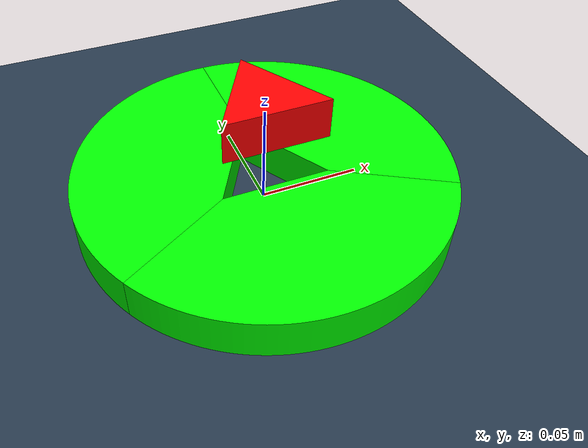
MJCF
<mujoco model="fall2020_peginhole_triangle">
    <compiler angle="radian"
              inertiafromgeom="true"
              texturedir="textures/"
              meshdir="mesh/"
              coordinate="local"
              settotalmass="5"/>
    <option timestep="0.01" gravity="0 0 0" iterations="20" integrator="RK4" />

    <size nstack="300000" nuser_geom="1"/>
    <default>
        <geom contype='1' conaffinity='1' condim='4'  margin="0" solref=".02 1" solimp=".8 .9 .001" />
        <joint armature="0.1" damping=".1"/>

        <default class="slide_joint">
            <joint type="slide" damping='1'/>
        </default>
        <default class="hinge_joint">
            <joint type="hinge" damping='1'/>
        </default>
    </default>

    <visual>
        <map fogstart="3" fogend="5" znear="0.05"/>
        <quality shadowsize="2048"/>
        <scale framelength="0.1"
               framewidth="0.005"
               contactwidth="0.1"
               contactheight="0.005"
               forcewidth="0.01"
               />
    </visual>

    <asset>

        <mesh name="peg"       file="trianguler_peg.stl" scale="0.000975 0.000975 0.001"/>
        <mesh name="hole"       file="triangle_hole_part.stl" scale="0.001 0.001 0.001"/>

        <texture name="floor_tex"   type="2d"        builtin="checker" rgb1=".7 .7 .7" rgb2=".8 .8 .8" width="100" height="100" />
        <texture name="metal"   type="2d"        builtin="checker" rgb1=".7 .7 .7" rgb2=".3 .3 .3" width="100" height="100" />
        <material name='floor_mat'      texture="floor_tex"  shininess="0.8" texrepeat="10 10" specular="0.7"  reflectance="0.2" />
        <material name="bench_mat"      texture="metal"   shininess="0.1" specular="0.5" reflectance="0.2"/>
        <texture name="texplane" type="2d" builtin="checker" rgb1=".2 .3 .4" rgb2=".1 0.15 0.2" width="512" height="512" mark="cross" markrgb=".8 .8 .8"/>
        <material name="matplane" reflectance="0.3" texture="texplane" texrepeat="1 1" texuniform="true"/>
    </asset>

    <!--MODEL DESCRIPTION-->
    <worldbody>

        <geom name="ground" type="plane" size="7 7 1" pos="0 0 0" quat="1 0 0 0" material="matplane" condim="1"/>
        <body name="peg" pos="0.0 0.0 0.05">
            <joint name="slide1" class="slide_joint" axis="1 0 0"/>
            <joint name="slide2" class="slide_joint" axis="0 1 0"/>
            <joint name="slide3" class="slide_joint" axis="0 0 1"/>
            <joint name="hinge1" class="hinge_joint" axis="1 0 0"/>
            <joint name="hinge2" class="hinge_joint" axis="0 1 0"/>
            <joint name="hinge3" class="hinge_joint" axis="0 0 1"/>

            <site name="vertex1" pos = "-0.0079 -0.0079 -0.005" type="sphere" size="0.0005" rgba="0.6 0.8 0.1 1"/>
            <geom type="mesh" mesh="peg" pos="0 0 -0.01" contype="1" conaffinity="1" rgba="1 0 0 1"/>
        </body>

        <body name="hole" pos="0 0 0.01">

            <geom type="mesh" pos="0 0 -0.01" mesh="hole" quat = "0.5 0 0 -0.8660254" rgba = "0 1 0 1" contype="1" conaffinity="1"/>
            <geom type="mesh" pos="0 0 -0.01" quat = "1 0 0 0" mesh="hole" rgba = "0 1 0 1" contype="1" conaffinity="1"/>
            <geom type="mesh" pos="0 0 -0.01" quat = "0.5 0 0 0.8660254 " mesh="hole" rgba = "0 1 0 1" contype="1" conaffinity="1"/>

        </body>

    </worldbody>

    <!--ACTUATORS-->
    <actuator>
        <velocity name='velocity1' joint='slide1' kv="10" ctrllimited = "true" ctrlrange = "-0.1 0.1" forcelimited = "true" forcerange = "-50 50"/>
        <velocity name='velocity2' joint='slide2' kv="10" ctrllimited = "true" ctrlrange = "-0.1 0.1" forcelimited = "true" forcerange = "-50 50"/>
        <velocity name='velocity3' joint='slide3' kv="10" ctrllimited = "true" ctrlrange = "-0.1 0.1" forcelimited = "true" forcerange = "-50 50"/>

        <velocity name='rotation1' joint='hinge1' kv="10"  ctrllimited = "true" ctrlrange = "-0.35 0.35" forcelimited = "true" forcerange = "-10 10"/>
        <!-- limit 20 degrees per second -->
        <velocity name='rotation2' joint='hinge2' kv="10" ctrllimited = "true" ctrlrange = "-0.35 0.35" forcelimited = "true" forcerange = "-10 10"/>
        <velocity name='rotation3' joint='hinge3' kv="10" ctrllimited = "true" ctrlrange = "-0.35 0.35" forcelimited = "true" forcerange = "-10 10"/>

    </actuator>
    <sensor>
     <force  name="forcesensor" site="vertex1" />
    </sensor>

</mujoco>
